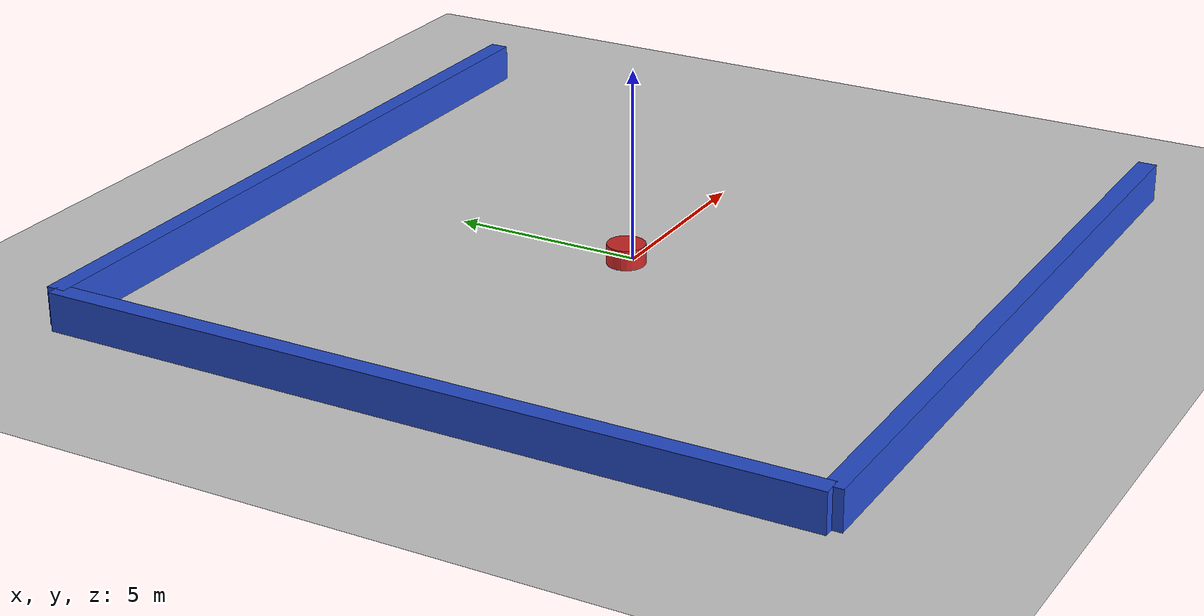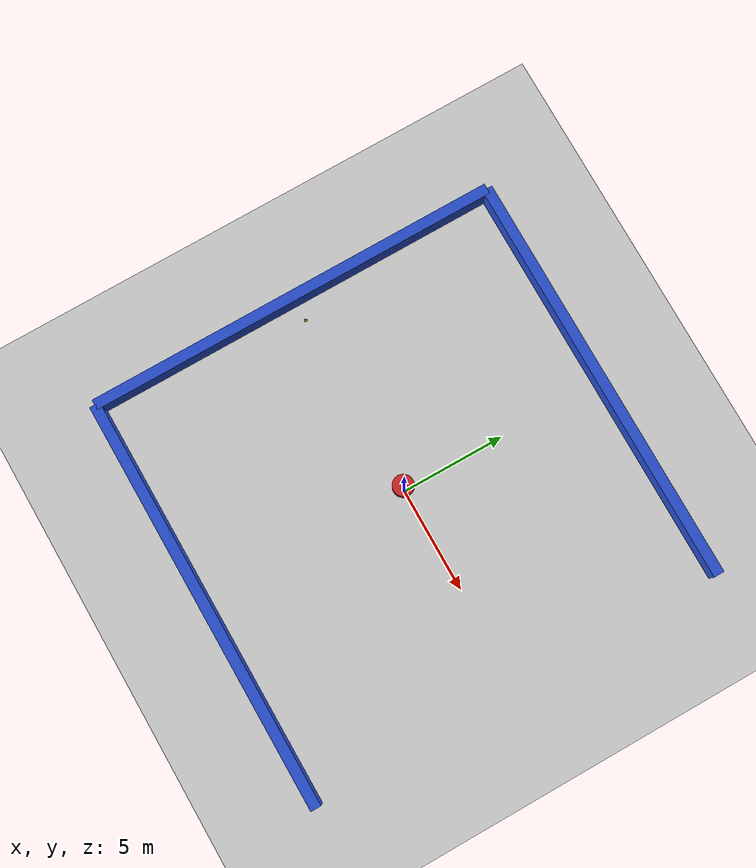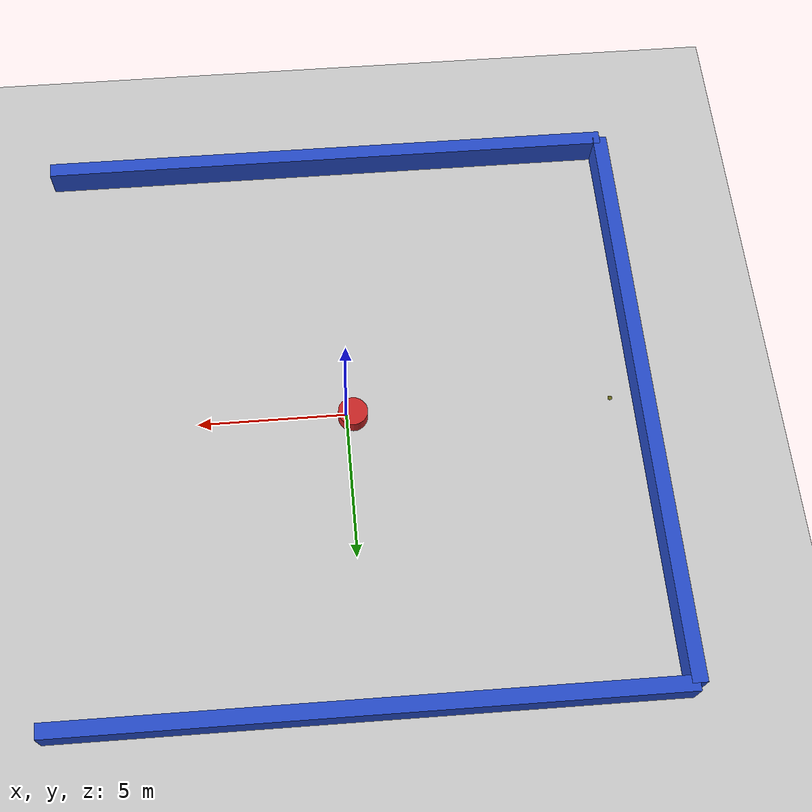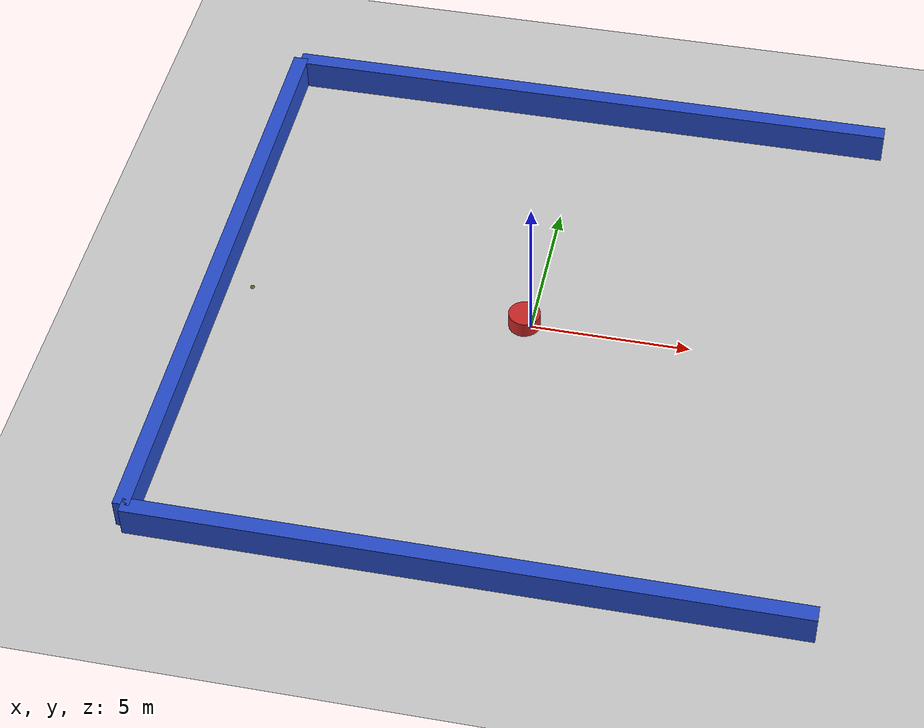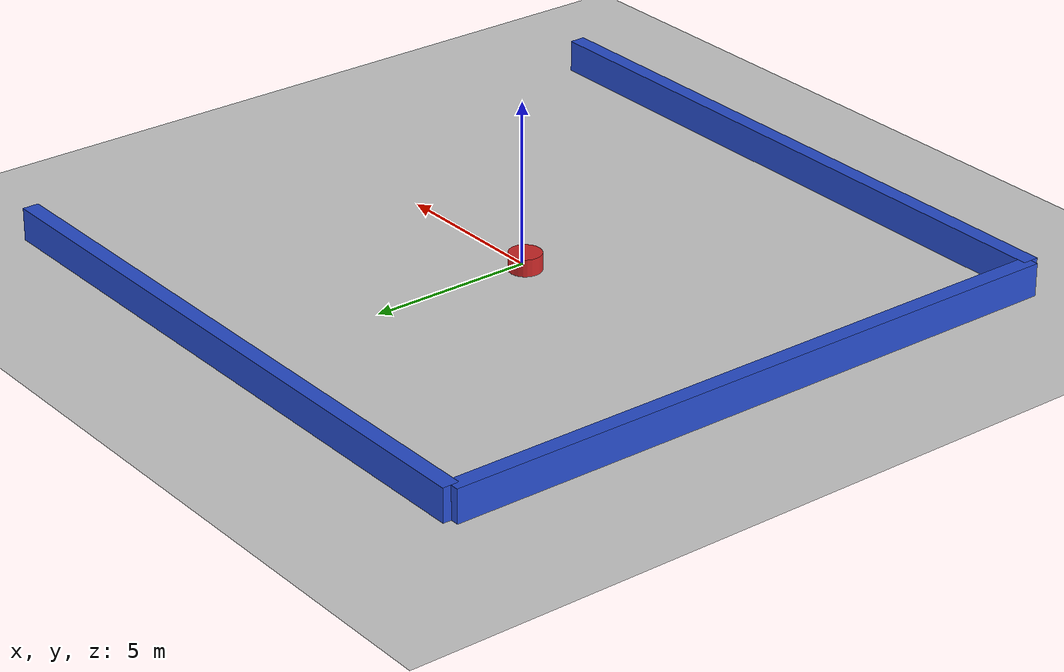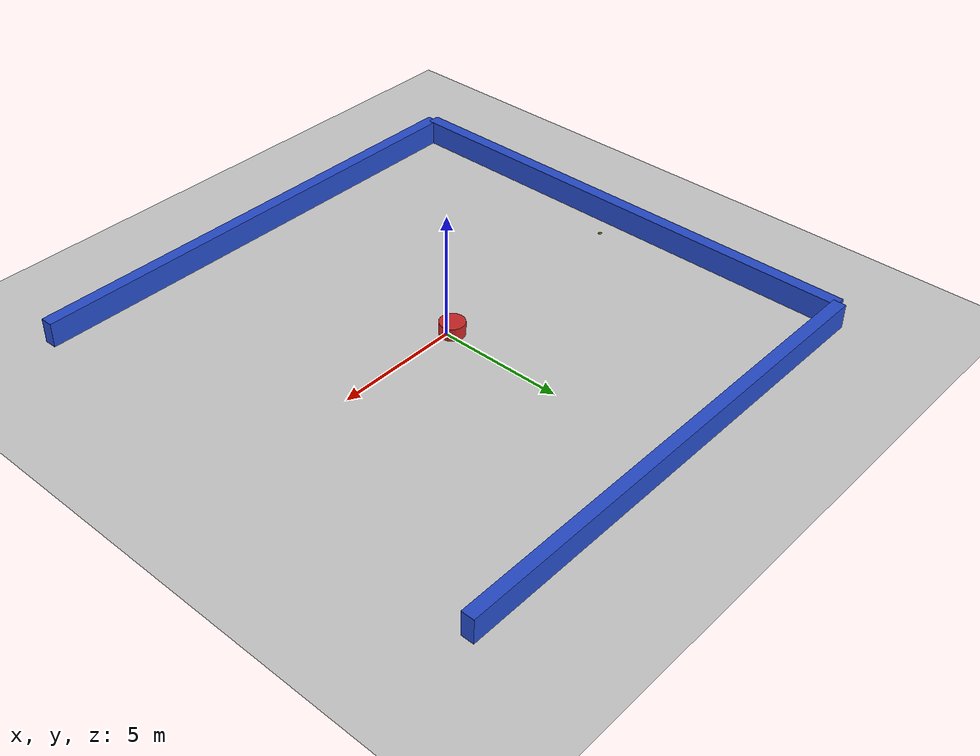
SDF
<sdf version="1.6">
   <world name="default">
      <include>
         <uri>model://ground_plane</uri>
      </include>
      <include>
         <uri>model://sun</uri>
      </include>

    <model name="hardlibobs_145">
      <static>1</static>
      <pose frame="">-0.225000 0.075000 0.000000 0.000000 0.000000 0.000000</pose>
      <link name="link">
        <inertial>
          <mass>1</mass>
          <inertia>
            <ixx>0.145833</ixx>
            <ixy>0</ixy>
            <ixz>0</ixz>
            <iyy>0.145833</iyy>
            <iyz>0</iyz>
            <izz>0.125</izz>
          </inertia>
        </inertial>
        <collision name="collision">
           <geometry>
            <cylinder>
                <radius>0.5000</radius>
                 <length> 1 </length>
            </cylinder>
          </geometry>
           <surface>
            <contact>
              <ode />
            </contact>
            <bounce />
            <friction>
              <torsional>
                <ode />
              </torsional>
              <ode />
            </friction>
          </surface>
        </collision>
        <visual name="visual">
           <geometry>
            <cylinder>
                <radius>0.5000</radius>
                 <length> 1 </length>
            </cylinder>
          </geometry>
          <material>
            <script>
              <name>Gazebo/Red</name>
              <uri>file://media/materials/scripts/gazebo.material</uri>
            </script>
          </material>
        </visual>
        <self_collide>0</self_collide>
        <kinematic>0</kinematic>
        <gravity>1</gravity>
      </link>
      <plugin name="hardlibobs_145" filename="hardlibobs_145.so" />
    </model>

    <model name="hardlibobs_144">
      <static>1</static>
      <pose frame="">-0.225000 0.075000 0.000000 0.000000 0.000000 0.000000</pose>
      <link name="link">
        <inertial>
          <mass>1</mass>
          <inertia>
            <ixx>0.145833</ixx>
            <ixy>0</ixy>
            <ixz>0</ixz>
            <iyy>0.145833</iyy>
            <iyz>0</iyz>
            <izz>0.125</izz>
          </inertia>
        </inertial>
        <collision name="collision">
           <geometry>
            <cylinder>
                <radius>0.5000</radius>
                 <length> 1 </length>
            </cylinder>
          </geometry>
           <surface>
            <contact>
              <ode />
            </contact>
            <bounce />
            <friction>
              <torsional>
                <ode />
              </torsional>
              <ode />
            </friction>
          </surface>
        </collision>
        <visual name="visual">
           <geometry>
            <cylinder>
                <radius>0.5000</radius>
                 <length> 1 </length>
            </cylinder>
          </geometry>
          <material>
            <script>
              <name>Gazebo/Red</name>
              <uri>file://media/materials/scripts/gazebo.material</uri>
            </script>
          </material>
        </visual>
        <self_collide>0</self_collide>
        <kinematic>0</kinematic>
        <gravity>1</gravity>
      </link>
      <plugin name="hardlibobs_144" filename="hardlibobs_144.so" />
    </model>

    <model name="hardlibobs_168">
      <static>1</static>
      <pose frame="">-0.225000 0.075000 0.000000 0.000000 0.000000 0.000000</pose>
      <link name="link">
        <inertial>
          <mass>1</mass>
          <inertia>
            <ixx>0.145833</ixx>
            <ixy>0</ixy>
            <ixz>0</ixz>
            <iyy>0.145833</iyy>
            <iyz>0</iyz>
            <izz>0.125</izz>
          </inertia>
        </inertial>
        <collision name="collision">
           <geometry>
            <cylinder>
                <radius>0.5000</radius>
                 <length> 1 </length>
            </cylinder>
          </geometry>
           <surface>
            <contact>
              <ode />
            </contact>
            <bounce />
            <friction>
              <torsional>
                <ode />
              </torsional>
              <ode />
            </friction>
          </surface>
        </collision>
        <visual name="visual">
           <geometry>
            <cylinder>
                <radius>0.5000</radius>
                 <length> 1 </length>
            </cylinder>
          </geometry>
          <material>
            <script>
              <name>Gazebo/Red</name>
              <uri>file://media/materials/scripts/gazebo.material</uri>
            </script>
          </material>
        </visual>
        <self_collide>0</self_collide>
        <kinematic>0</kinematic>
        <gravity>1</gravity>
      </link>
      <plugin name="hardlibobs_168" filename="hardlibobs_168.so" />
    </model>

    <model name="hardlibobs_41">
      <static>1</static>
      <pose frame="">-0.225000 0.075000 0.000000 0.000000 0.000000 0.000000</pose>
      <link name="link">
        <inertial>
          <mass>1</mass>
          <inertia>
            <ixx>0.145833</ixx>
            <ixy>0</ixy>
            <ixz>0</ixz>
            <iyy>0.145833</iyy>
            <iyz>0</iyz>
            <izz>0.125</izz>
          </inertia>
        </inertial>
        <collision name="collision">
           <geometry>
            <cylinder>
                <radius>0.5000</radius>
                 <length> 1 </length>
            </cylinder>
          </geometry>
           <surface>
            <contact>
              <ode />
            </contact>
            <bounce />
            <friction>
              <torsional>
                <ode />
              </torsional>
              <ode />
            </friction>
          </surface>
        </collision>
        <visual name="visual">
           <geometry>
            <cylinder>
                <radius>0.5000</radius>
                 <length> 1 </length>
            </cylinder>
          </geometry>
          <material>
            <script>
              <name>Gazebo/Red</name>
              <uri>file://media/materials/scripts/gazebo.material</uri>
            </script>
          </material>
        </visual>
        <self_collide>0</self_collide>
        <kinematic>0</kinematic>
        <gravity>1</gravity>
      </link>
      <plugin name="hardlibobs_41" filename="hardlibobs_41.so" />
    </model>

    <model name="mediumlibobs_195">
      <static>1</static>
      <pose frame="">-0.225000 0.075000 0.000000 0.000000 0.000000 0.000000</pose>
      <link name="link">
        <inertial>
          <mass>1</mass>
          <inertia>
            <ixx>0.145833</ixx>
            <ixy>0</ixy>
            <ixz>0</ixz>
            <iyy>0.145833</iyy>
            <iyz>0</iyz>
            <izz>0.125</izz>
          </inertia>
        </inertial>
        <collision name="collision">
           <geometry>
            <cylinder>
                <radius>0.5000</radius>
                 <length> 1 </length>
            </cylinder>
          </geometry>
           <surface>
            <contact>
              <ode />
            </contact>
            <bounce />
            <friction>
              <torsional>
                <ode />
              </torsional>
              <ode />
            </friction>
          </surface>
        </collision>
        <visual name="visual">
           <geometry>
            <cylinder>
                <radius>0.5000</radius>
                 <length> 1 </length>
            </cylinder>
          </geometry>
          <material>
            <script>
              <name>Gazebo/Red</name>
              <uri>file://media/materials/scripts/gazebo.material</uri>
            </script>
          </material>
        </visual>
        <self_collide>0</self_collide>
        <kinematic>0</kinematic>
        <gravity>1</gravity>
      </link>
      <plugin name="mediumlibobs_195" filename="mediumlibobs_195.so" />
    </model>

    <model name="mediumlibobs_29">
      <static>1</static>
      <pose frame="">-0.225000 0.075000 0.000000 0.000000 0.000000 0.000000</pose>
      <link name="link">
        <inertial>
          <mass>1</mass>
          <inertia>
            <ixx>0.145833</ixx>
            <ixy>0</ixy>
            <ixz>0</ixz>
            <iyy>0.145833</iyy>
            <iyz>0</iyz>
            <izz>0.125</izz>
          </inertia>
        </inertial>
        <collision name="collision">
           <geometry>
            <cylinder>
                <radius>0.5000</radius>
                 <length> 1 </length>
            </cylinder>
          </geometry>
           <surface>
            <contact>
              <ode />
            </contact>
            <bounce />
            <friction>
              <torsional>
                <ode />
              </torsional>
              <ode />
            </friction>
          </surface>
        </collision>
        <visual name="visual">
           <geometry>
            <cylinder>
                <radius>0.5000</radius>
                 <length> 1 </length>
            </cylinder>
          </geometry>
          <material>
            <script>
              <name>Gazebo/Red</name>
              <uri>file://media/materials/scripts/gazebo.material</uri>
            </script>
          </material>
        </visual>
        <self_collide>0</self_collide>
        <kinematic>0</kinematic>
        <gravity>1</gravity>
      </link>
      <plugin name="mediumlibobs_29" filename="mediumlibobs_29.so" />
    </model>

    <model name="hardlibobs_108">
      <static>1</static>
      <pose frame="">-0.225000 0.075000 0.000000 0.000000 0.000000 0.000000</pose>
      <link name="link">
        <inertial>
          <mass>1</mass>
          <inertia>
            <ixx>0.145833</ixx>
            <ixy>0</ixy>
            <ixz>0</ixz>
            <iyy>0.145833</iyy>
            <iyz>0</iyz>
            <izz>0.125</izz>
          </inertia>
        </inertial>
        <collision name="collision">
           <geometry>
            <cylinder>
                <radius>0.5000</radius>
                 <length> 1 </length>
            </cylinder>
          </geometry>
           <surface>
            <contact>
              <ode />
            </contact>
            <bounce />
            <friction>
              <torsional>
                <ode />
              </torsional>
              <ode />
            </friction>
          </surface>
        </collision>
        <visual name="visual">
           <geometry>
            <cylinder>
                <radius>0.5000</radius>
                 <length> 1 </length>
            </cylinder>
          </geometry>
          <material>
            <script>
              <name>Gazebo/Red</name>
              <uri>file://media/materials/scripts/gazebo.material</uri>
            </script>
          </material>
        </visual>
        <self_collide>0</self_collide>
        <kinematic>0</kinematic>
        <gravity>1</gravity>
      </link>
      <plugin name="hardlibobs_108" filename="hardlibobs_108.so" />
    </model>

    <model name="mediumlibobs_94">
      <static>1</static>
      <pose frame="">-0.225000 0.075000 0.000000 0.000000 0.000000 0.000000</pose>
      <link name="link">
        <inertial>
          <mass>1</mass>
          <inertia>
            <ixx>0.145833</ixx>
            <ixy>0</ixy>
            <ixz>0</ixz>
            <iyy>0.145833</iyy>
            <iyz>0</iyz>
            <izz>0.125</izz>
          </inertia>
        </inertial>
        <collision name="collision">
           <geometry>
            <cylinder>
                <radius>0.5000</radius>
                 <length> 1 </length>
            </cylinder>
          </geometry>
           <surface>
            <contact>
              <ode />
            </contact>
            <bounce />
            <friction>
              <torsional>
                <ode />
              </torsional>
              <ode />
            </friction>
          </surface>
        </collision>
        <visual name="visual">
           <geometry>
            <cylinder>
                <radius>0.5000</radius>
                 <length> 1 </length>
            </cylinder>
          </geometry>
          <material>
            <script>
              <name>Gazebo/Red</name>
              <uri>file://media/materials/scripts/gazebo.material</uri>
            </script>
          </material>
        </visual>
        <self_collide>0</self_collide>
        <kinematic>0</kinematic>
        <gravity>1</gravity>
      </link>
      <plugin name="mediumlibobs_94" filename="mediumlibobs_94.so" />
    </model>

    <model name="hardlibobs_60">
      <static>1</static>
      <pose frame="">-0.225000 0.075000 0.000000 0.000000 0.000000 0.000000</pose>
      <link name="link">
        <inertial>
          <mass>1</mass>
          <inertia>
            <ixx>0.145833</ixx>
            <ixy>0</ixy>
            <ixz>0</ixz>
            <iyy>0.145833</iyy>
            <iyz>0</iyz>
            <izz>0.125</izz>
          </inertia>
        </inertial>
        <collision name="collision">
           <geometry>
            <cylinder>
                <radius>0.5000</radius>
                 <length> 1 </length>
            </cylinder>
          </geometry>
           <surface>
            <contact>
              <ode />
            </contact>
            <bounce />
            <friction>
              <torsional>
                <ode />
              </torsional>
              <ode />
            </friction>
          </surface>
        </collision>
        <visual name="visual">
           <geometry>
            <cylinder>
                <radius>0.5000</radius>
                 <length> 1 </length>
            </cylinder>
          </geometry>
          <material>
            <script>
              <name>Gazebo/Red</name>
              <uri>file://media/materials/scripts/gazebo.material</uri>
            </script>
          </material>
        </visual>
        <self_collide>0</self_collide>
        <kinematic>0</kinematic>
        <gravity>1</gravity>
      </link>
      <plugin name="hardlibobs_60" filename="hardlibobs_60.so" />
    </model>

      <model name="back_wall">
      <static>1</static>\   <pose frame="">-10 0 .5 0 0 0</pose>        <link name="box_link">

	<collision name="collision">
            <geometry>
              <box>
                <size>.5 20 1</size>
              </box>
            </geometry>
           <surface>
            <contact>
              <ode />
            </contact>
            <bounce />
            <friction>
              <torsional>
                <ode />
              </torsional>
              <ode />
            </friction>
          </surface>
        </collision>

          <visual name="visual">
            <geometry>
              <box>
                <size>.5 20 1</size>
              </box>
            </geometry>
          <material>
                 <script>
                     <name>Gazebo/Blue</name>
                         <uri>file://media/materials/scripts/gazebo.material</uri>
                         </script>
                     </material>
          </visual>
        </link>
      </model>
      <model name="top_wall">
      <static>1</static>
       <pose frame="">0 10 .5 0 0 0</pose>        <link name="box_link">

	<collision name="collision">
           <geometry>
              <box>
                <size>20 .5 1</size>
              </box>
            </geometry>
           <surface>
            <contact>
              <ode />
            </contact>
            <bounce />
            <friction>
              <torsional>
                <ode />
              </torsional>
              <ode />
            </friction>
          </surface>
        </collision>
          <visual name="visual">
            <geometry>
              <box>
                <size>20 .5 1</size>
              </box>
            </geometry>
          <material>
                 <script>
                     <name>Gazebo/Blue</name>
                         <uri>file://media/materials/scripts/gazebo.material</uri>
                         </script>
                     </material>
          </visual>
        </link>
      </model>
      <model name="bottom_wall">
      <static>1</static>
       <pose frame="">0 -10 .5 0 0 0</pose>        <link name="box_link">
	<collision name="collision">
            <geometry>
              <box>
                <size>20 .5 1</size>
              </box>
            </geometry>
           <surface>
            <contact>
              <ode />
            </contact>
            <bounce />
            <friction>
              <torsional>
                <ode />
              </torsional>
              <ode />
            </friction>
          </surface>
        </collision>
          <visual name="visual">
            <geometry>
              <box>
                <size>20 .5 1</size>
              </box>
            </geometry>
          <material>
                 <script>
                     <name>Gazebo/Blue</name>
                         <uri>file://media/materials/scripts/gazebo.material</uri>
                         </script>
                     </material>
          </visual>
        </link>
      </model>
   <model name="goal"><static>1</static><pose frame="">-9.00000 0.000000 0.000000 0.000000 0.000000 0.000000</pose><link name="link"><inertial><mass>1</mass><inertia><ixx>0.145833</ixx><ixy>0</ixy><ixz>0</ixz><iyy>0.145833</iyy><iyz>0</iyz><izz>0.125</izz></inertia></inertial><collision name="collision"><geometry><cylinder><radius>0.075000</radius><length>1</length></cylinder></geometry><max_contacts>10</max_contacts><surface><contact><ode /></contact><bounce /><friction><torsional><ode /></torsional><ode /></friction></surface></collision><visual name="visual"><geometry><cylinder><radius>0.075000</radius><length>0.001</length></cylinder></geometry><material><ambient>0 1 0 1</ambient><diffuse>0.4 0.4 0.1 1</diffuse></material><material><script><name>Gazebo/Grey</name><uri>file://media/materials/scripts/gazebo.material</uri></script></material></visual><self_collide>0</self_collide><kinematic>0</kinematic><gravity>0</gravity></link></model></world>
</sdf>
